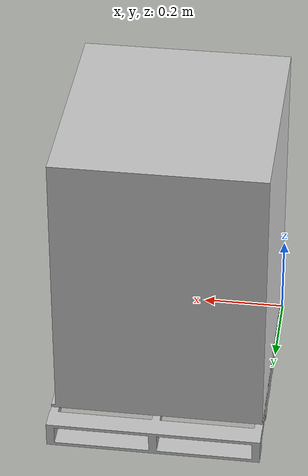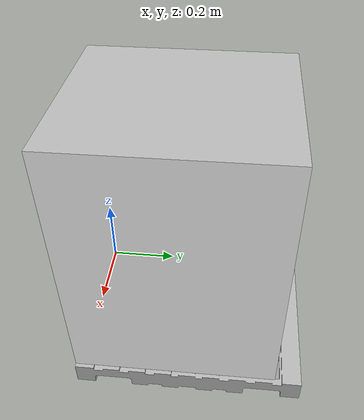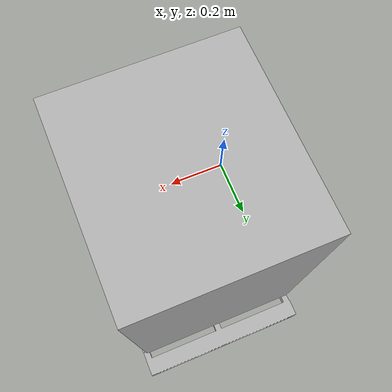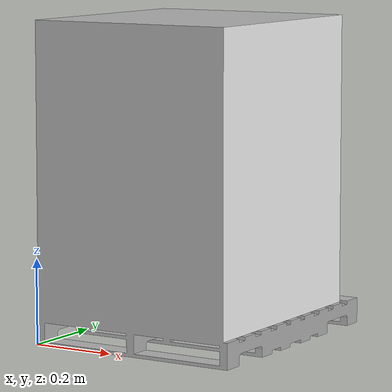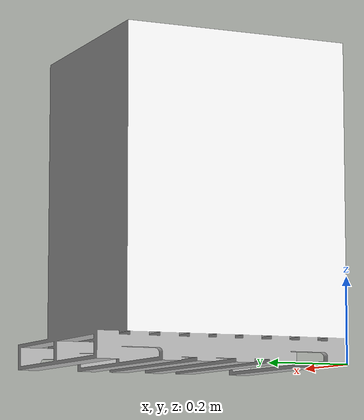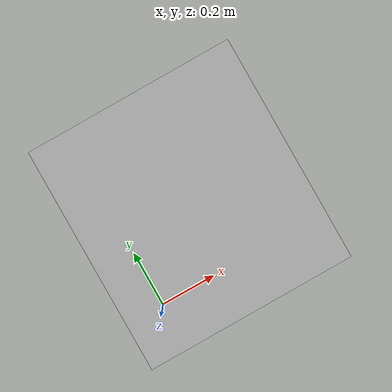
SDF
<?xml version="1.0" ?>
<sdf version="1.5">
  <model name="skid_udine_stay_flats">
    <static>true</static>
    <link name="skid_udine_stay_flats_link">
        <collision name="skid_udine_stay_flats_collision">
         <geometry>
            <mesh>
                <uri>model://skid_udine_stay_flats/meshes/model.dae</uri>
                <scale>0.5 0.5 0.5</scale>
            </mesh>
        </geometry>
      </collision>

      <visual name="skid_udine_stay_flats_mesh">
        <cast_shadows>true</cast_shadows>
        <geometry>
            <mesh>
                <uri>model://skid_udine_stay_flats/meshes/model.dae</uri>
                <scale>0.5 0.5 0.5</scale>
            </mesh>
        </geometry>
      </visual>
    </link>
  </model>
</sdf>
